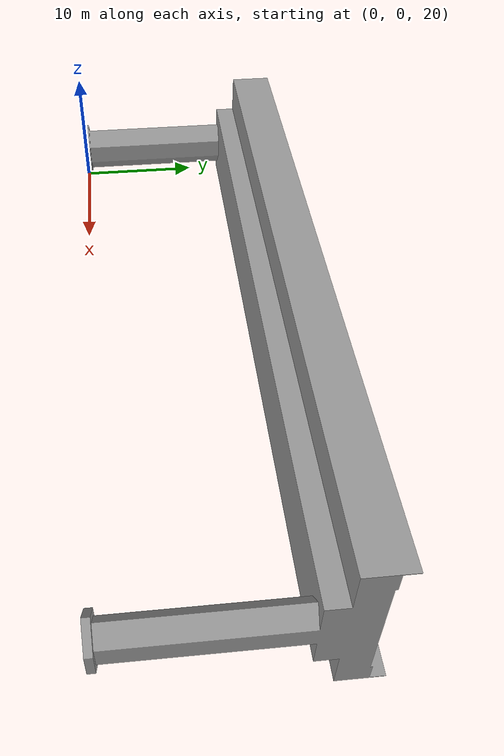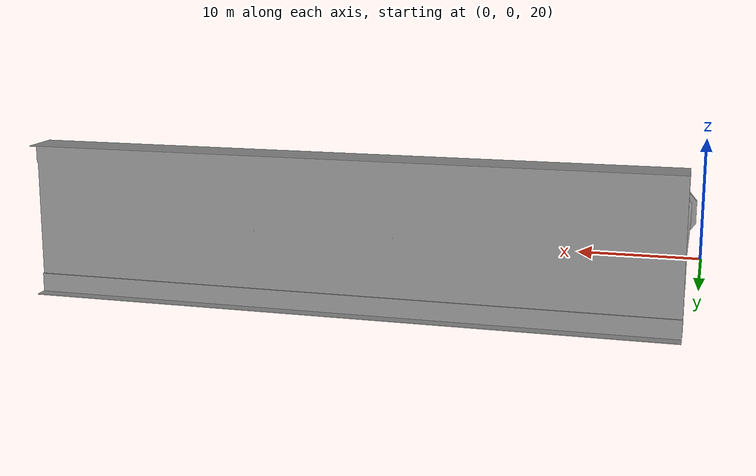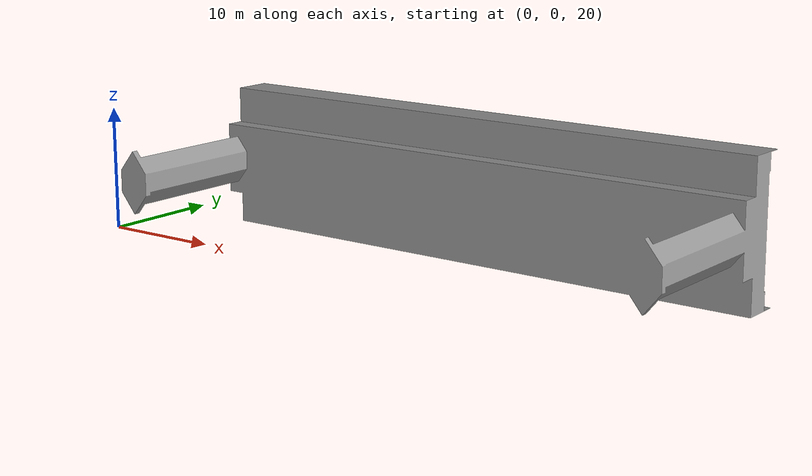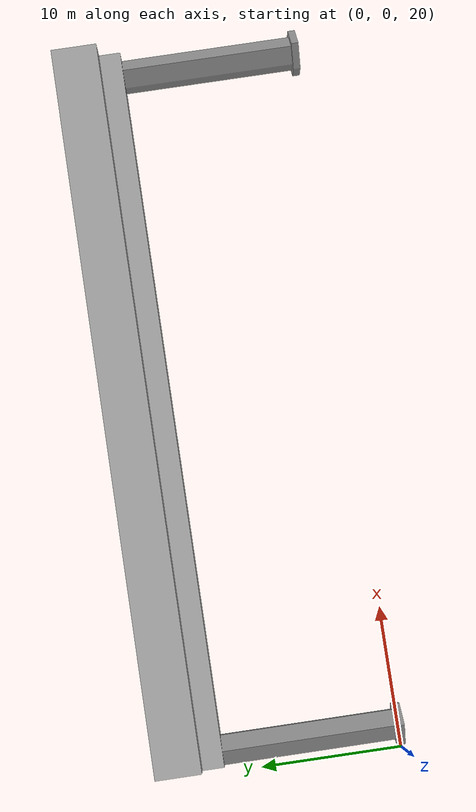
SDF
<?xml version='1.0'?>
<sdf version='1.4'>
	<model name='deungsun_bridge'>

		<static>true</static>

		<link name='link'>
				<visual name='visual'>
				<geometry>
					<mesh>
						<uri>model://deungsun_bridge/meshes/deungsun_bridge_simple.dae</uri>
					</mesh>
				</geometry>
				<material>
					<script>
						<uri>model://deungsun_bridge/materials/scripts</uri>
						<uri>model://deungsun_bridge/materials/textures</uri>
						<name>vrc/concrete</name>
					</script>
				</material>
			</visual>
			<collision name='collision'>
				<geometry>
					<mesh>
						<uri>model://deungsun_bridge/meshes/deungsun_bridge_simple.dae</uri>
					</mesh>
				</geometry>
				<material>
					<script>
						<uri>model://deungsun_bridge/materials/scripts</uri>
						<uri>model://deungsun_bridge/materials/textures</uri>
						<name>vrc/concrete</name>
					</script>
				</material>
			</collision>
		</link>

	</model>
</sdf>
